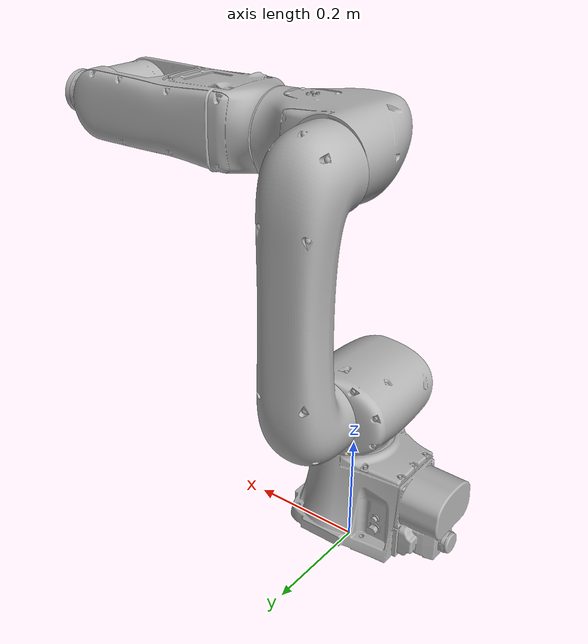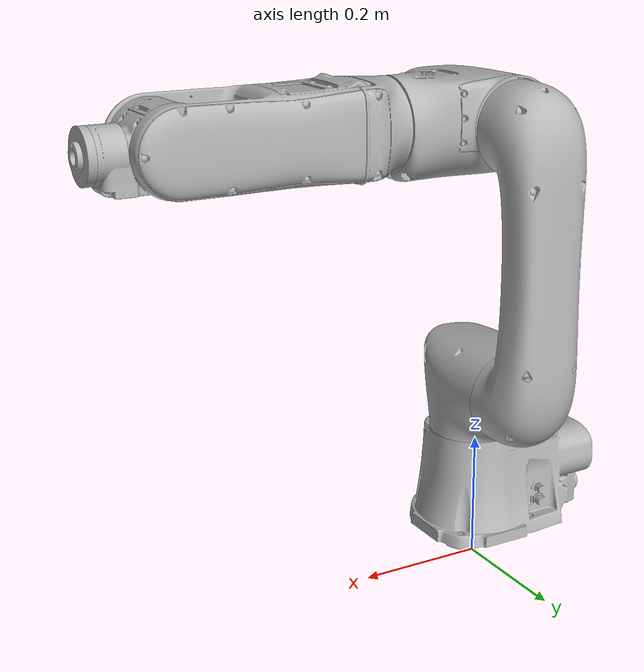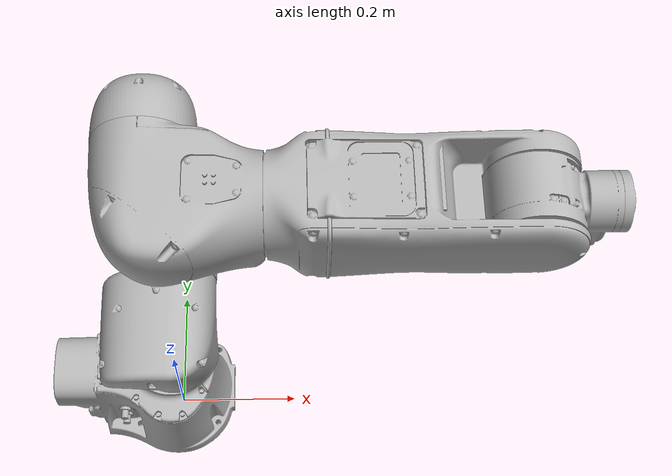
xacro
<?xml version="1.0" ?>
<robot name="rv5as_so-assy_model_asm" xmlns:xacro="http://www.ros.org/wiki/xacro">

<xacro:include filename="$(find rv5as_so-assy_model_asm_description)/urdf/materials.xacro" />
<xacro:include filename="$(find rv5as_so-assy_model_asm_description)/urdf/rv5as_so-assy_model_asm.ros2control.xml" />
<xacro:include filename="$(find rv5as_so-assy_model_asm_description)/urdf/rv5as_so-assy_model_asm.gazebo" />
<link name="base_link">
  <inertial>
    <origin xyz="-0.04015775240237844 -0.008087455227986535 0.13321293848251323" rpy="0 0 0"/>
    <mass value="44.57854074603627"/>
    <inertia ixx="0.183167" iyy="0.31138" izz="0.308937" ixy="0.014262" iyz="0.002097" ixz="0.004808"/>
  </inertial>
  <visual>
    <origin xyz="0 0 0" rpy="0 0 0"/>
    <geometry>
      <mesh filename="file://$(find rv5as_so-assy_model_asm_description)/meshes/base_link.stl" scale="0.001 0.001 0.001"/>
    </geometry>
    <material name="silver"/>
  </visual>
  <collision>
    <origin xyz="0 0 0" rpy="0 0 0"/>
    <geometry>
      <mesh filename="file://$(find rv5as_so-assy_model_asm_description)/meshes/base_link.stl" scale="0.001 0.001 0.001"/>
    </geometry>
  </collision>
</link>

<link name="RV5AS_J6_INTERFACE_1">
  <inertial>
    <origin xyz="0.006905937486133995 3.1321802296951917e-07 0.0001662021318461493" rpy="0 0 0"/>
    <mass value="0.5076989572815161"/>
    <inertia ixx="0.000369" iyy="0.000193" izz="0.000196" ixy="-0.0" iyz="0.0" ixz="0.0"/>
  </inertial>
  <visual>
    <origin xyz="-0.616622 -0.004929 -0.718176" rpy="0 0 0"/>
    <geometry>
      <mesh filename="file://$(find rv5as_so-assy_model_asm_description)/meshes/RV5AS_J6_INTERFACE_1.stl" scale="0.001 0.001 0.001"/>
    </geometry>
    <material name="silver"/>
  </visual>
  <collision>
    <origin xyz="-0.616622 -0.004929 -0.718176" rpy="0 0 0"/>
    <geometry>
      <mesh filename="file://$(find rv5as_so-assy_model_asm_description)/meshes/RV5AS_J6_INTERFACE_1.stl" scale="0.001 0.001 0.001"/>
    </geometry>
  </collision>
</link>

<link name="RV5AS_J5_WRIST_MODEL_1">
  <inertial>
    <origin xyz="0.014479771299330091 0.0517907490289845 -0.0018065793505943617" rpy="0 0 0"/>
    <mass value="11.967157567611743"/>
    <inertia ixx="0.02046" iyy="0.032247" izz="0.031083" ixy="-0.000209" iyz="1.2e-05" ixz="0.001214"/>
  </inertial>
  <visual>
    <origin xyz="-0.510622 0.048071 -0.718176" rpy="0 0 0"/>
    <geometry>
      <mesh filename="file://$(find rv5as_so-assy_model_asm_description)/meshes/RV5AS_J5_WRIST_MODEL_1.stl" scale="0.001 0.001 0.001"/>
    </geometry>
    <material name="silver"/>
  </visual>
  <collision>
    <origin xyz="-0.510622 0.048071 -0.718176" rpy="0 0 0"/>
    <geometry>
      <mesh filename="file://$(find rv5as_so-assy_model_asm_description)/meshes/RV5AS_J5_WRIST_MODEL_1.stl" scale="0.001 0.001 0.001"/>
    </geometry>
  </collision>
</link>

<link name="RV5AS_J4_NO2ARM_MODEL_1">
  <inertial>
    <origin xyz="0.15711143974892197 0.0013045008309874495 -0.000626359799977938" rpy="0 0 0"/>
    <mass value="44.10461061203024"/>
    <inertia ixx="0.156504" iyy="0.502164" izz="0.547798" ixy="-0.010242" iyz="-6.9e-05" ixz="-0.000508"/>
  </inertial>
  <visual>
    <origin xyz="-0.166401 -0.003429 -0.721429" rpy="0 0 0"/>
    <geometry>
      <mesh filename="file://$(find rv5as_so-assy_model_asm_description)/meshes/RV5AS_J4_NO2ARM_MODEL_1.stl" scale="0.001 0.001 0.001"/>
    </geometry>
    <material name="silver"/>
  </visual>
  <collision>
    <origin xyz="-0.166401 -0.003429 -0.721429" rpy="0 0 0"/>
    <geometry>
      <mesh filename="file://$(find rv5as_so-assy_model_asm_description)/meshes/RV5AS_J4_NO2ARM_MODEL_1.stl" scale="0.001 0.001 0.001"/>
    </geometry>
  </collision>
</link>

<link name="RV5AS_J3_ELBOW_MODEL_1">
  <inertial>
    <origin xyz="0.04922632340485495 -0.09056190162445074 0.0031098923407243406" rpy="0 0 0"/>
    <mass value="37.70192536503796"/>
    <inertia ixx="0.146998" iyy="0.182219" izz="0.213997" ixy="0.008908" iyz="0.00227" ixz="0.004558"/>
  </inertial>
  <visual>
    <origin xyz="-0.007123 -0.094929 -0.716076" rpy="0 0 0"/>
    <geometry>
      <mesh filename="file://$(find rv5as_so-assy_model_asm_description)/meshes/RV5AS_J3_ELBOW_MODEL_1.stl" scale="0.001 0.001 0.001"/>
    </geometry>
    <material name="silver"/>
  </visual>
  <collision>
    <origin xyz="-0.007123 -0.094929 -0.716076" rpy="0 0 0"/>
    <geometry>
      <mesh filename="file://$(find rv5as_so-assy_model_asm_description)/meshes/RV5AS_J3_ELBOW_MODEL_1.stl" scale="0.001 0.001 0.001"/>
    </geometry>
  </collision>
</link>

<link name="RV5AS_J2_NO1ARM_MODEL_1">
  <inertial>
    <origin xyz="5.761105872793132e-07 0.05757372207392948 0.20499992328030492" rpy="0 0 0"/>
    <mass value="40.15203942940935"/>
    <inertia ixx="1.065848" iyy="1.077982" izz="0.074735" ixy="-0.0" iyz="0.0" ixz="1e-06"/>
  </inertial>
  <visual>
    <origin xyz="-0.007123 -0.094929 -0.306076" rpy="0 0 0"/>
    <geometry>
      <mesh filename="file://$(find rv5as_so-assy_model_asm_description)/meshes/RV5AS_J2_NO1ARM_MODEL_1.stl" scale="0.001 0.001 0.001"/>
    </geometry>
    <material name="silver"/>
  </visual>
  <collision>
    <origin xyz="-0.007123 -0.094929 -0.306076" rpy="0 0 0"/>
    <geometry>
      <mesh filename="file://$(find rv5as_so-assy_model_asm_description)/meshes/RV5AS_J2_NO1ARM_MODEL_1.stl" scale="0.001 0.001 0.001"/>
    </geometry>
  </collision>
</link>

<link name="RV5AS_J1_SHOULDER_MODEL_1">
  <inertial>
    <origin xyz="-0.017825958926974663 0.0035806599057574703 0.0771268984646043" rpy="0 0 0"/>
    <mass value="30.517792236378934"/>
    <inertia ixx="0.122627" iyy="0.10972" izz="0.138699" ixy="-0.003265" iyz="0.002156" ixz="0.003964"/>
  </inertial>
  <visual>
    <origin xyz="-0.00624 -0.003429 -0.2229" rpy="0 0 0"/>
    <geometry>
      <mesh filename="file://$(find rv5as_so-assy_model_asm_description)/meshes/RV5AS_J1_SHOULDER_MODEL_1.stl" scale="0.001 0.001 0.001"/>
    </geometry>
    <material name="silver"/>
  </visual>
  <collision>
    <origin xyz="-0.00624 -0.003429 -0.2229" rpy="0 0 0"/>
    <geometry>
      <mesh filename="file://$(find rv5as_so-assy_model_asm_description)/meshes/RV5AS_J1_SHOULDER_MODEL_1.stl" scale="0.001 0.001 0.001"/>
    </geometry>
  </collision>
</link>

<joint name="Revolute_1" type="continuous">
  <origin xyz="0.106 0.053 0.0" rpy="0 0 0"/>
  <parent link="RV5AS_J5_WRIST_MODEL_1"/>
  <child link="RV5AS_J6_INTERFACE_1"/>
  <axis xyz="1.0 -0.0 -0.0"/>
</joint>

<joint name="Revolute_2" type="continuous">
  <origin xyz="0.344221 -0.0515 -0.003253" rpy="0 0 0"/>
  <parent link="RV5AS_J4_NO2ARM_MODEL_1"/>
  <child link="RV5AS_J5_WRIST_MODEL_1"/>
  <axis xyz="0.0 1.0 -0.0"/>
</joint>

<joint name="Revolute_3" type="continuous">
  <origin xyz="0.159278 -0.0915 0.005353" rpy="0 0 0"/>
  <parent link="RV5AS_J3_ELBOW_MODEL_1"/>
  <child link="RV5AS_J4_NO2ARM_MODEL_1"/>
  <axis xyz="1.0 -0.0 -0.0"/>
</joint>

<joint name="Revolute_4" type="continuous">
  <origin xyz="0.0 0.0 0.41" rpy="0 0 0"/>
  <parent link="RV5AS_J2_NO1ARM_MODEL_1"/>
  <child link="RV5AS_J3_ELBOW_MODEL_1"/>
  <axis xyz="-0.0 -1.0 -0.0"/>
</joint>

<joint name="Revolute_5" type="continuous">
  <origin xyz="0.000883 0.0915 0.083176" rpy="0 0 0"/>
  <parent link="RV5AS_J1_SHOULDER_MODEL_1"/>
  <child link="RV5AS_J2_NO1ARM_MODEL_1"/>
  <axis xyz="-0.0 1.0 0.0"/>
</joint>

<joint name="Revolute_6" type="continuous">
  <origin xyz="0.00624 0.003429 0.2229" rpy="0 0 0"/>
  <parent link="base_link"/>
  <child link="RV5AS_J1_SHOULDER_MODEL_1"/>
  <axis xyz="0.0 0.0 1.0"/>
</joint>

</robot>

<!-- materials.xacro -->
<robot name="rv5as_so-assy_model_asm" xmlns:xacro="http://www.ros.org/wiki/xacro" >

<material name="silver">
  <color rgba="0.700 0.700 0.700 1.000"/>
</material>

</robot>

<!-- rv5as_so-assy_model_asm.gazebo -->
<robot name="rv5as_so-assy_model_asm" xmlns:xacro="http://www.ros.org/wiki/xacro" >

<xacro:property name="body_color" value="Gazebo/Silver" />

<gazebo reference="base_link">
  <material>${body_color}</material>
  <mu1>0.2</mu1>
  <mu2>0.2</mu2>
  <self_collide>true</self_collide>
  <gravity>true</gravity>
</gazebo>

<gazebo reference="RV5AS_J6_INTERFACE_1">
  <material>${body_color}</material>
  <mu1>0.2</mu1>
  <mu2>0.2</mu2>
  <self_collide>true</self_collide>
</gazebo>

<gazebo reference="RV5AS_J5_WRIST_MODEL_1">
  <material>${body_color}</material>
  <mu1>0.2</mu1>
  <mu2>0.2</mu2>
  <self_collide>true</self_collide>
</gazebo>

<gazebo reference="RV5AS_J4_NO2ARM_MODEL_1">
  <material>${body_color}</material>
  <mu1>0.2</mu1>
  <mu2>0.2</mu2>
  <self_collide>true</self_collide>
</gazebo>

<gazebo reference="RV5AS_J3_ELBOW_MODEL_1">
  <material>${body_color}</material>
  <mu1>0.2</mu1>
  <mu2>0.2</mu2>
  <self_collide>true</self_collide>
</gazebo>

<gazebo reference="RV5AS_J2_NO1ARM_MODEL_1">
  <material>${body_color}</material>
  <mu1>0.2</mu1>
  <mu2>0.2</mu2>
  <self_collide>true</self_collide>
</gazebo>

<gazebo reference="RV5AS_J1_SHOULDER_MODEL_1">
  <material>${body_color}</material>
  <mu1>0.2</mu1>
  <mu2>0.2</mu2>
  <self_collide>true</self_collide>
</gazebo>

</robot>
